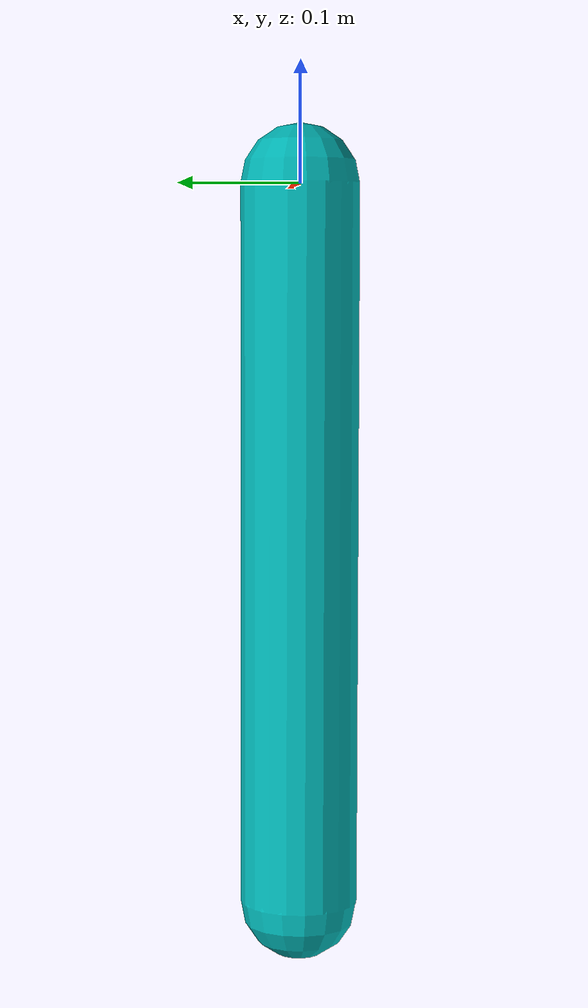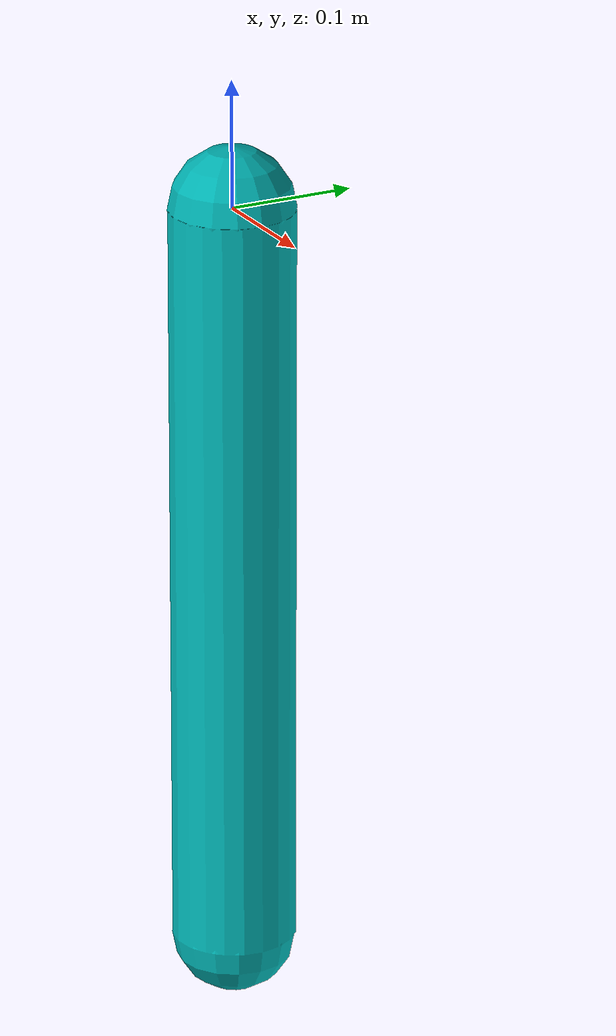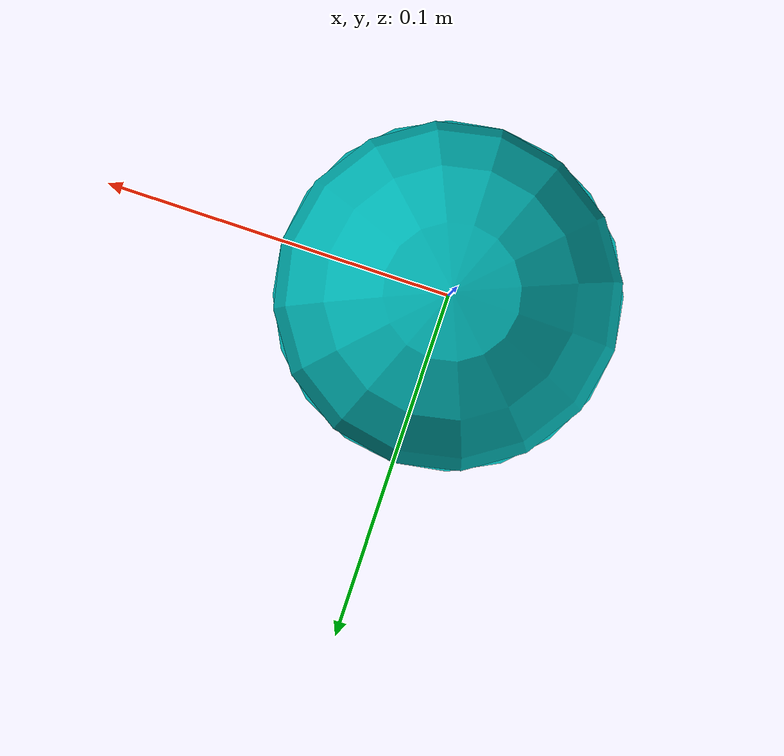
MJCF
<mujoco model="pendulum">
  <compiler inertiafromgeom="true"/>
  <default>
    <geom contype="0" rgba="0.7 0.7 0 1"/>
    <motor ctrlrange="-3 3"/>
  </default>
  <option gravity="0 0 -9.81" integrator="RK4" timestep="0.02"/>
  <worldbody>
    <body name="pendulum" pos="0 0 0">
      <joint axis="0 1 0" name="hinge" pos="0 0 0"/>
      <geom fromto="0 0 0 0.001 0 -0.6" name="pendulum" rgba="0 0.7 0.7 1" size="0.049 0.3" type="capsule"/>
    </body>
  </worldbody>
  <actuator>
    <motor joint="hinge"/>
  </actuator>
</mujoco>
